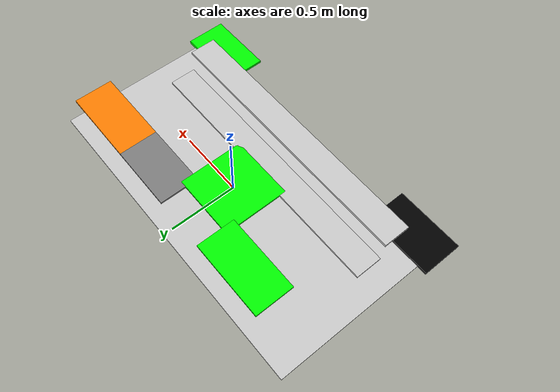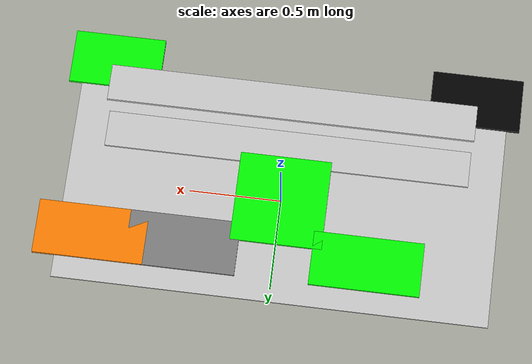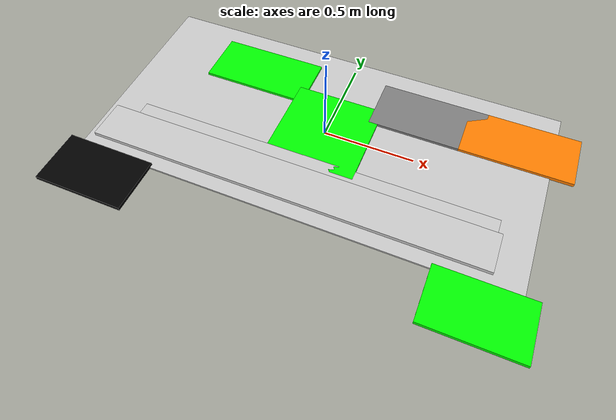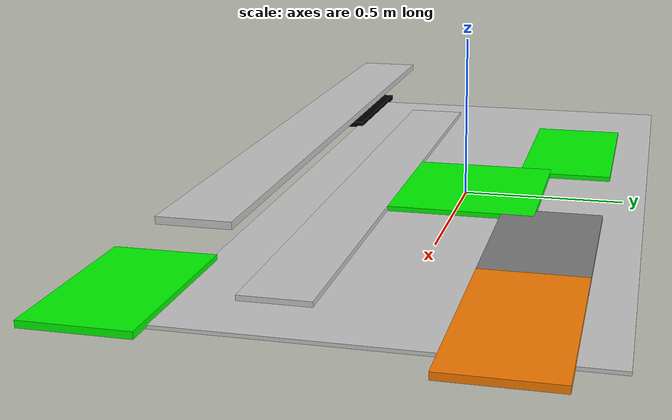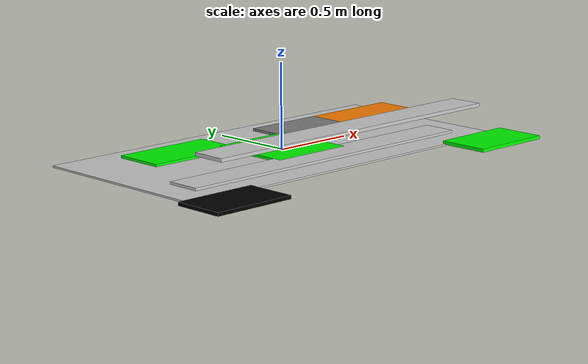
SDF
<?xml version="1.0"?>
<sdf version="1.6">
  <world name="agri_field">
    <!-- Field dimensions: 2.36m x 1.14m -->
    <model name="field">
      <static>true</static>
      <link name="link">
        <visual name="visual">
          <geometry>
            <box>
              <size>2.36 1.14 0.01</size>
            </box>
          </geometry>
          <material>
            <diffuse>0.8 0.8 0.8 1</diffuse>
          </material>
        </visual>
        <collision name="collision">
          <geometry>
            <box>
              <size>2.36 1.14 0.01</size>
            </box>
          </geometry>
        </collision>
      </link>
    </model>

    <!-- Start Zone -->
    <model name="start_zone">
      <static>true</static>
      <pose>0 0 0.01 0 0 0</pose>
      <link name="link">
        <visual name="visual">
          <geometry>
            <box>
              <size>0.5 0.5 0.02</size>
            </box>
          </geometry>
          <material>
            <diffuse>0 1 0 1</diffuse>
          </material>
        </visual>
      </link>
    </model>

    <!-- Plots (simplified) -->
    <model name="orange_plot">
      <static>true</static>
      <pose>1.0 0.3 0.01 0 0 0</pose>
      <link name="link">
        <visual name="visual">
          <geometry>
            <box>
              <size>0.6 0.3 0.02</size>
            </box>
          </geometry>
          <material>
            <diffuse>1 0.5 0 1</diffuse>
          </material>
        </visual>
      </link>
    </model>

    <model name="gray_plot">
      <static>true</static>
      <pose>0.5 0.3 0.01 0 0 0</pose>
      <link name="link">
        <visual name="visual">
          <geometry>
            <box>
              <size>0.6 0.3 0.02</size>
            </box>
          </geometry>
          <material>
            <diffuse>0.5 0.5 0.5 1</diffuse>
          </material>
        </visual>
      </link>
    </model>

    <model name="green_plot">
      <static>true</static>
      <pose>-0.5 0.3 0.01 0 0 0</pose>
      <link name="link">
        <visual name="visual">
          <geometry>
            <box>
              <size>0.6 0.3 0.02</size>
            </box>
          </geometry>
          <material>
            <diffuse>0 1 0 1</diffuse>
          </material>
        </visual>
      </link>
    </model>

    <!-- Fruit rows -->
    <model name="fruit_row_ground">
      <static>true</static>
      <pose>0 -0.3 0.01 0 0 0</pose>
      <link name="link">
        <visual name="visual">
          <geometry>
            <box>
              <size>2.0 0.2 0.02</size>
            </box>
          </geometry>
          <material>
            <diffuse>0.8 0.8 0.8 1</diffuse>
          </material>
        </visual>
      </link>
    </model>

    <model name="fruit_row_elevated">
      <static>true</static>
      <pose>0 -0.5 0.2 0 0 0</pose>
      <link name="link">
        <visual name="visual">
          <geometry>
            <box>
              <size>2.0 0.2 0.02</size>
            </box>
          </geometry>
          <material>
            <diffuse>0.8 0.8 0.8 1</diffuse>
          </material>
        </visual>
      </link>
    </model>

    <!-- Sorting zones -->
    <model name="fruits_zone">
      <static>true</static>
      <pose>1.0 -0.7 0.01 0 0 0</pose>
      <link name="link">
        <visual name="visual">
          <geometry>
            <box>
              <size>0.5 0.3 0.02</size>
            </box>
          </geometry>
          <material>
            <diffuse>0 1 0 1</diffuse>  <!-- Green for Fruits -->
          </material>
        </visual>
      </link>
    </model>

    <model name="waste_zone">
      <static>true</static>
      <pose>-1.0 -0.7 0.01 0 0 0</pose>
      <link name="link">
        <visual name="visual">
          <geometry>
            <box>
              <size>0.5 0.3 0.02</size>
            </box>
          </geometry>
          <material>
            <diffuse>0 0 0 1</diffuse>  <!-- Black for Waste -->
          </material>
        </visual>
      </link>
    </model>

  </world>
</sdf>
